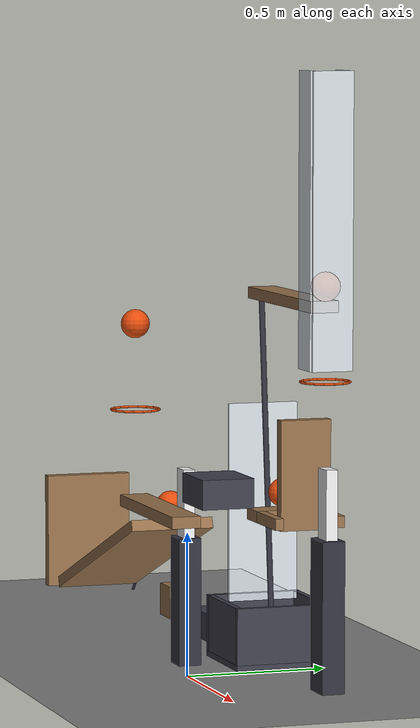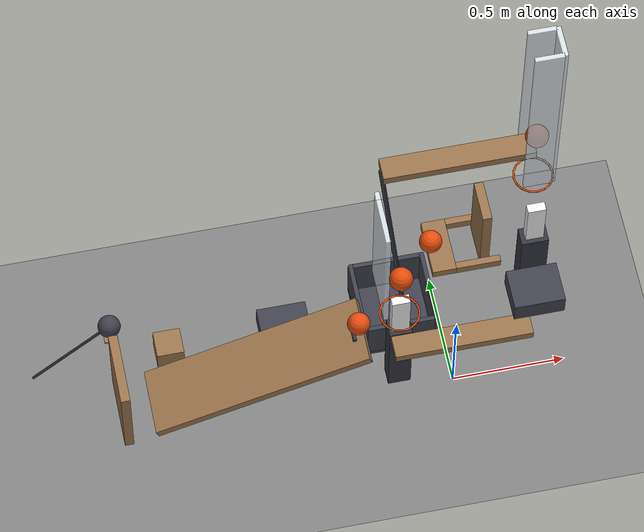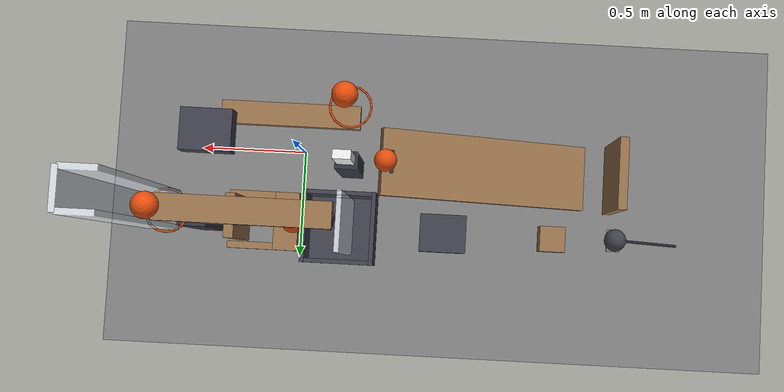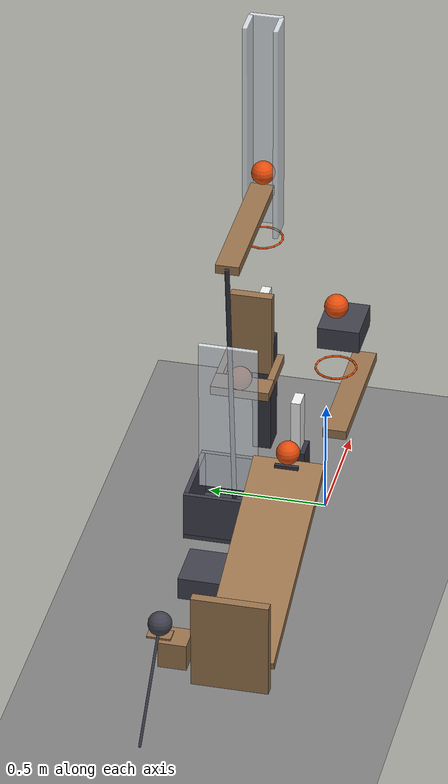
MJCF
<mujoco model="gravity_and_spring_cascade">
  <compiler angle="radian"/>
  <option timestep="0.002"/>
  <worldbody>
    <geom name="floor" type="plane" size="8 8 0.1" friction="0.72 0.005 0.0002"/>
    <body name="lever1" pos="0 -0.1 0.58">
      <joint name="lever1_hinge" type="hinge" pos="0 0 0" axis="0 1 0" limited="true" range="-0.785398 0" damping="0.04"/>
      <geom name="lever1" type="box" pos="0 0 0" size="0.3 0.05 0.02" mass="0.5" friction="0.72 0.005 0.0001" solref="0.01 0.715646" rgba="0.6 0.45 0.3 1"/>
    </body>
    <body name="ring1">
      <geom name="ring1_00" type="capsule" size="0.004" fromto="-0.196 -0.1 0.9 -0.202394 -0.0678546 0.9" friction="0.72 0.005 0.0001" solref="0.01 0.715646" rgba="0.9 0.3 0.05 1"/>
      <geom name="ring1_01" type="capsule" size="0.004" fromto="-0.202394 -0.0678546 0.9 -0.220603 -0.040603 0.9" friction="0.72 0.005 0.0001" solref="0.01 0.715646" rgba="0.9 0.3 0.05 1"/>
      <geom name="ring1_02" type="capsule" size="0.004" fromto="-0.220603 -0.040603 0.9 -0.247855 -0.0223941 0.9" friction="0.72 0.005 0.0001" solref="0.01 0.715646" rgba="0.9 0.3 0.05 1"/>
      <geom name="ring1_03" type="capsule" size="0.004" fromto="-0.247855 -0.0223941 0.9 -0.28 -0.016 0.9" friction="0.72 0.005 0.0001" solref="0.01 0.715646" rgba="0.9 0.3 0.05 1"/>
      <geom name="ring1_04" type="capsule" size="0.004" fromto="-0.28 -0.016 0.9 -0.312145 -0.0223941 0.9" friction="0.72 0.005 0.0001" solref="0.01 0.715646" rgba="0.9 0.3 0.05 1"/>
      <geom name="ring1_05" type="capsule" size="0.004" fromto="-0.312145 -0.0223941 0.9 -0.339397 -0.040603 0.9" friction="0.72 0.005 0.0001" solref="0.01 0.715646" rgba="0.9 0.3 0.05 1"/>
      <geom name="ring1_06" type="capsule" size="0.004" fromto="-0.339397 -0.040603 0.9 -0.357606 -0.0678546 0.9" friction="0.72 0.005 0.0001" solref="0.01 0.715646" rgba="0.9 0.3 0.05 1"/>
      <geom name="ring1_07" type="capsule" size="0.004" fromto="-0.357606 -0.0678546 0.9 -0.364 -0.1 0.9" friction="0.72 0.005 0.0001" solref="0.01 0.715646" rgba="0.9 0.3 0.05 1"/>
      <geom name="ring1_08" type="capsule" size="0.004" fromto="-0.364 -0.1 0.9 -0.357606 -0.132145 0.9" friction="0.72 0.005 0.0001" solref="0.01 0.715646" rgba="0.9 0.3 0.05 1"/>
      <geom name="ring1_09" type="capsule" size="0.004" fromto="-0.357606 -0.132145 0.9 -0.339397 -0.159397 0.9" friction="0.72 0.005 0.0001" solref="0.01 0.715646" rgba="0.9 0.3 0.05 1"/>
      <geom name="ring1_10" type="capsule" size="0.004" fromto="-0.339397 -0.159397 0.9 -0.312145 -0.177606 0.9" friction="0.72 0.005 0.0001" solref="0.01 0.715646" rgba="0.9 0.3 0.05 1"/>
      <geom name="ring1_11" type="capsule" size="0.004" fromto="-0.312145 -0.177606 0.9 -0.28 -0.184 0.9" friction="0.72 0.005 0.0001" solref="0.01 0.715646" rgba="0.9 0.3 0.05 1"/>
      <geom name="ring1_12" type="capsule" size="0.004" fromto="-0.28 -0.184 0.9 -0.247855 -0.177606 0.9" friction="0.72 0.005 0.0001" solref="0.01 0.715646" rgba="0.9 0.3 0.05 1"/>
      <geom name="ring1_13" type="capsule" size="0.004" fromto="-0.247855 -0.177606 0.9 -0.220603 -0.159397 0.9" friction="0.72 0.005 0.0001" solref="0.01 0.715646" rgba="0.9 0.3 0.05 1"/>
      <geom name="ring1_14" type="capsule" size="0.004" fromto="-0.220603 -0.159397 0.9 -0.202394 -0.132145 0.9" friction="0.72 0.005 0.0001" solref="0.01 0.715646" rgba="0.9 0.3 0.05 1"/>
      <geom name="ring1_15" type="capsule" size="0.004" fromto="-0.202394 -0.132145 0.9 -0.196 -0.1 0.9" friction="0.72 0.005 0.0001" solref="0.01 0.715646" rgba="0.9 0.3 0.05 1"/>
    </body>
    <body name="ball1" pos="-0.28 -0.1 1.2">
      <freejoint/>
      <geom name="ball1" type="sphere" pos="0 0 0" size="0.05" mass="0.2" condim="6" friction="0.72 0.005 0.0001" solref="0.01 0.715646" rgba="0.9 0.3 0.05 1"/>
    </body>
    <body name="cart1" pos="0.335 0 0.69">
      <joint name="cart1_slide" type="slide" pos="0 0 0" axis="1 0 0" limited="true" range="-0.65 0" damping="0.2"/>
      <geom name="cart1" type="box" pos="0 0 0" size="0.11 0.09 0.05" mass="0.5" friction="0.72 0.005 0.0001" solref="0.01 0.715646" rgba="0.25 0.25 0.3 1"/>
    </body>
    <body name="domino1 pedestal">
      <geom name="domino1 pedestal" type="box" pos="-0.235 0.07 0.225" size="0.05 0.04 0.225" friction="0.72 0.005 0.0001" solref="0.01 0.715646" rgba="0.2 0.2 0.25 1"/>
    </body>
    <body name="domino1" pos="-0.235 0.07 0.57">
      <freejoint/>
      <geom name="domino1" type="box" pos="0 0 0" size="0.04 0.02 0.12" mass="0.25" friction="0.72 0.005 0.0001" solref="0.01 0.715646" rgba="0.95 0.95 0.95 1"/>
    </body>
    <body name="ramp1">
      <geom name="ramp1" type="box" pos="-0.860905 0.07 0.302216" size="0.5 0.15 0.02" euler="0 2.79253 0" friction="0.72 0.005 0.0001" solref="0.01 0.715646" rgba="0.6 0.45 0.3 1"/>
    </body>
    <body name="ball2 chock">
      <geom name="ball2 chock" type="box" pos="-0.441 0.07 0.4852" size="0.008 0.05 0.0075" friction="0.72 0.005 0.0001" solref="0.01 0.715646" rgba="0.2 0.2 0.25 1"/>
    </body>
    <body name="ball2" pos="-0.415 0.07 0.539005">
      <freejoint/>
      <geom name="ball2" type="sphere" pos="0 0 0" size="0.05" mass="0.2" condim="6" friction="0.72 0.005 0.0001" solref="0.01 0.715646" rgba="0.9 0.3 0.05 1"/>
    </body>
    <body name="door1" pos="-1.45759 0.07 0.1">
      <joint name="door1_hinge" type="hinge" pos="0 0 0" axis="0 1 0" limited="true" range="-1.22173 0" damping="0.04"/>
      <geom name="door1" type="box" pos="0 0 0.21" size="0.02 0.16 0.21" mass="0.45" friction="0.72 0.005 0.0001" solref="0.01 0.715646" rgba="0.6 0.45 0.3 1"/>
      <geom name="door1 pendulum support" type="box" pos="0 0.29 0.211" size="0.03 0.05 0.004" mass="0.005" friction="0.72 0.005 0.0001" solref="0.01 0.715646" rgba="0.6 0.45 0.3 1"/>
    </body>
    <body name="pendulum1" pos="-1.81115 0.36 0.0114466">
      <joint name="pendulum1_hinge" type="hinge" pos="0 0 0" axis="0 1 0" limited="true" range="0 0.663225" stiffness="70" springref="0.663225" damping="0.04"/>
      <geom name="pendulum1" type="capsule" size="0.006" fromto="0 0 0 0.353553 0 0.353553" mass="0.1" friction="0.72 0.005 0.0001" solref="0.01 0.715646" rgba="0.2 0.2 0.25 1"/>
      <geom name="pendulum1 bob" type="sphere" pos="0.353553 0 0.353553" size="0.05" mass="0.25" friction="0.72 0.005 0.0001" solref="0.01 0.715646" rgba="0.25 0.25 0.3 1"/>
    </body>
    <body name="block1" pos="-1.20487 0.36 0.06">
      <freejoint/>
      <geom name="block1" type="box" pos="0 0 0" size="0.06 0.06 0.06" mass="0.35" friction="0.72 0.005 0.0001" solref="0.01 0.715646" rgba="0.6 0.45 0.3 1"/>
    </body>
    <body name="cart2" pos="-0.684872 0.36 0.055">
      <joint name="cart2_slide" type="slide" pos="0 0 0" axis="1 0 0" limited="true" range="0 1.4" damping="0.2"/>
      <geom name="cart2" type="box" pos="0 0 0" size="0.11 0.09 0.05" mass="0.5" friction="0.72 0.005 0.0001" solref="0.01 0.715646" rgba="0.25 0.25 0.3 1"/>
    </body>
    <body name="seesaw1" pos="0.0551281 0.36 1.3">
      <joint name="seesaw1_hinge" type="hinge" pos="0 0 0" axis="0 1 0" limited="true" range="-0.733038 0" stiffness="0.8" springref="-0.733038" damping="0.04"/>
      <geom name="seesaw1" type="box" pos="0 0 0" size="0.325 0.05 0.02" mass="0.55" friction="0.72 0.005 0.0001" solref="0.01 0.715646" rgba="0.6 0.45 0.3 1"/>
      <geom name="seesaw1 left striker" type="capsule" size="0.01" fromto="-0.325 0 0 -0.2 0 -1.255" mass="0.015" friction="0.72 0.005 0.0001" solref="0.01 0.715646" rgba="0.2 0.2 0.25 1"/>
    </body>
    <body name="ball3" pos="0.390128 0.36 1.36899">
      <freejoint/>
      <geom name="ball3" type="sphere" pos="0 0 0" size="0.05" mass="0.2" condim="6" friction="0.72 0.005 0.0001" solref="0.01 0.715646" rgba="0.9 0.3 0.05 1"/>
    </body>
    <body name="ball3 right guide">
      <geom name="ball3 right guide" type="box" pos="0.455128 0.36 1.59" size="0.01 0.07 0.5" friction="0.72 0.005 0.0001" solref="0.01 0.715646" rgba="0.92 0.95 0.98 0.85"/>
    </body>
    <body name="ball3 left-side guide">
      <geom name="ball3 left-side guide" type="box" pos="0.390128 0.425 1.59" size="0.06 0.01 0.5" friction="0.72 0.005 0.0001" solref="0.01 0.715646" rgba="0.92 0.95 0.98 0.85"/>
    </body>
    <body name="ball3 right-side guide">
      <geom name="ball3 right-side guide" type="box" pos="0.390128 0.295 1.59" size="0.06 0.01 0.5" friction="0.72 0.005 0.0001" solref="0.01 0.715646" rgba="0.92 0.95 0.98 0.85"/>
    </body>
    <body name="ring2">
      <geom name="ring2_00" type="capsule" size="0.004" fromto="0.474128 0.36 1.04899 0.467734 0.392145 1.04899" friction="0.72 0.005 0.0001" solref="0.01 0.715646" rgba="0.9 0.3 0.05 1"/>
      <geom name="ring2_01" type="capsule" size="0.004" fromto="0.467734 0.392145 1.04899 0.449525 0.419397 1.04899" friction="0.72 0.005 0.0001" solref="0.01 0.715646" rgba="0.9 0.3 0.05 1"/>
      <geom name="ring2_02" type="capsule" size="0.004" fromto="0.449525 0.419397 1.04899 0.422273 0.437606 1.04899" friction="0.72 0.005 0.0001" solref="0.01 0.715646" rgba="0.9 0.3 0.05 1"/>
      <geom name="ring2_03" type="capsule" size="0.004" fromto="0.422273 0.437606 1.04899 0.390128 0.444 1.04899" friction="0.72 0.005 0.0001" solref="0.01 0.715646" rgba="0.9 0.3 0.05 1"/>
      <geom name="ring2_04" type="capsule" size="0.004" fromto="0.390128 0.444 1.04899 0.357983 0.437606 1.04899" friction="0.72 0.005 0.0001" solref="0.01 0.715646" rgba="0.9 0.3 0.05 1"/>
      <geom name="ring2_05" type="capsule" size="0.004" fromto="0.357983 0.437606 1.04899 0.330731 0.419397 1.04899" friction="0.72 0.005 0.0001" solref="0.01 0.715646" rgba="0.9 0.3 0.05 1"/>
      <geom name="ring2_06" type="capsule" size="0.004" fromto="0.330731 0.419397 1.04899 0.312522 0.392145 1.04899" friction="0.72 0.005 0.0001" solref="0.01 0.715646" rgba="0.9 0.3 0.05 1"/>
      <geom name="ring2_07" type="capsule" size="0.004" fromto="0.312522 0.392145 1.04899 0.306128 0.36 1.04899" friction="0.72 0.005 0.0001" solref="0.01 0.715646" rgba="0.9 0.3 0.05 1"/>
      <geom name="ring2_08" type="capsule" size="0.004" fromto="0.306128 0.36 1.04899 0.312522 0.327855 1.04899" friction="0.72 0.005 0.0001" solref="0.01 0.715646" rgba="0.9 0.3 0.05 1"/>
      <geom name="ring2_09" type="capsule" size="0.004" fromto="0.312522 0.327855 1.04899 0.330731 0.300603 1.04899" friction="0.72 0.005 0.0001" solref="0.01 0.715646" rgba="0.9 0.3 0.05 1"/>
      <geom name="ring2_10" type="capsule" size="0.004" fromto="0.330731 0.300603 1.04899 0.357983 0.282394 1.04899" friction="0.72 0.005 0.0001" solref="0.01 0.715646" rgba="0.9 0.3 0.05 1"/>
      <geom name="ring2_11" type="capsule" size="0.004" fromto="0.357983 0.282394 1.04899 0.390128 0.276 1.04899" friction="0.72 0.005 0.0001" solref="0.01 0.715646" rgba="0.9 0.3 0.05 1"/>
      <geom name="ring2_12" type="capsule" size="0.004" fromto="0.390128 0.276 1.04899 0.422273 0.282394 1.04899" friction="0.72 0.005 0.0001" solref="0.01 0.715646" rgba="0.9 0.3 0.05 1"/>
      <geom name="ring2_13" type="capsule" size="0.004" fromto="0.422273 0.282394 1.04899 0.449525 0.300603 1.04899" friction="0.72 0.005 0.0001" solref="0.01 0.715646" rgba="0.9 0.3 0.05 1"/>
      <geom name="ring2_14" type="capsule" size="0.004" fromto="0.449525 0.300603 1.04899 0.467734 0.327855 1.04899" friction="0.72 0.005 0.0001" solref="0.01 0.715646" rgba="0.9 0.3 0.05 1"/>
      <geom name="ring2_15" type="capsule" size="0.004" fromto="0.467734 0.327855 1.04899 0.474128 0.36 1.04899" friction="0.72 0.005 0.0001" solref="0.01 0.715646" rgba="0.9 0.3 0.05 1"/>
    </body>
    <body name="domino2 pedestal">
      <geom name="domino2 pedestal" type="box" pos="0.420128 0.36 0.259495" size="0.06 0.04 0.259495" friction="0.72 0.005 0.0001" solref="0.01 0.715646" rgba="0.2 0.2 0.25 1"/>
    </body>
    <body name="domino2" pos="0.420128 0.36 0.63899">
      <freejoint/>
      <geom name="domino2" type="box" pos="0 0 0" size="0.04 0.02 0.12" mass="0.25" friction="0.72 0.005 0.0001" solref="0.01 0.715646" rgba="0.95 0.95 0.95 1"/>
    </body>
    <body name="flap1" pos="0.180128 0.36 0.51899">
      <joint name="flap1_hinge" type="hinge" pos="0 0 0" axis="0 1 0" limited="true" range="-1.0472 0" damping="0.04"/>
      <geom name="flap1" type="box" pos="0 0 0.19" size="0.02 0.09 0.19" mass="0.28" friction="0.72 0.005 0.0001" solref="0.01 0.715646" rgba="0.6 0.45 0.3 1"/>
    </body>
    <body name="cup1">
      <geom name="cup1_base" type="box" pos="-0.194872 0.36 0.01" size="0.17 0.17 0.01" friction="0.72 0.005 0.0001" solref="0.01 0.715646" rgba="0.25 0.25 0.3 1"/>
      <geom name="cup1_near_wall" type="box" pos="-0.354872 0.36 0.12" size="0.01 0.17 0.1" friction="0.72 0.005 0.0001" solref="0.01 0.715646" rgba="0.25 0.25 0.3 1"/>
      <geom name="cup1_far_wall" type="box" pos="-0.0348719 0.36 0.12" size="0.01 0.17 0.1" friction="0.72 0.005 0.0001" solref="0.01 0.715646" rgba="0.25 0.25 0.3 1"/>
      <geom name="cup1_left_wall" type="box" pos="-0.194872 0.52 0.12" size="0.15 0.01 0.1" friction="0.72 0.005 0.0001" solref="0.01 0.715646" rgba="0.25 0.25 0.3 1"/>
      <geom name="cup1_right_wall" type="box" pos="-0.194872 0.2 0.12" size="0.15 0.01 0.1" friction="0.72 0.005 0.0001" solref="0.01 0.715646" rgba="0.25 0.25 0.3 1"/>
    </body>
    <body name="shelf1">
      <geom name="shelf1_main_board" type="box" pos="-0.00287194 0.36 0.55" size="0.052 0.125 0.02" friction="0.72 0.005 0.0001" solref="0.01 0.715646" rgba="0.6 0.45 0.3 1"/>
      <geom name="shelf1_left_finger" type="box" pos="0.147128 0.47 0.55" size="0.098 0.015 0.02" friction="0.72 0.005 0.0001" solref="0.01 0.715646" rgba="0.6 0.45 0.3 1"/>
      <geom name="shelf1_right_finger" type="box" pos="0.147128 0.25 0.55" size="0.098 0.015 0.02" friction="0.72 0.005 0.0001" solref="0.01 0.715646" rgba="0.6 0.45 0.3 1"/>
    </body>
    <body name="ball4" pos="-0.0398719 0.36 0.62">
      <freejoint/>
      <geom name="ball4" type="sphere" pos="0 0 0" size="0.05" mass="0.2" condim="6" friction="0.72 0.005 0.0001" solref="0.01 0.715646" rgba="0.9 0.3 0.05 1"/>
    </body>
    <body name="cup1 catch backstop">
      <geom name="cup1 catch backstop" type="box" pos="-0.254872 0.36 0.56" size="0.01 0.125 0.35" friction="0.72 0.005 0.0001" solref="0.01 0.715646" rgba="0.92 0.95 0.98 0.85"/>
    </body>
  </worldbody>
  <keyframe>
    <key name="start" qpos="0 -0.28 -0.1 1.2 1 0 0 0 0 -0.235 0.07 0.57 1 0 0 0 -0.415 0.07 0.539005 1 0 0 0 0 0 -1.20487 0.36 0.06 1 0 0 0 0 0 0.390128 0.36 1.36899 1 0 0 0 0.420128 0.36 0.63899 1 0 0 0 0 -0.0398719 0.36 0.62 1 0 0 0" qvel="0 0 0 0 0 0 0 0 0 0 0 0 0 0 0 0 0 0 0 0 0 0 0 0 0 0 0 0 0 0 0 0 0 0 0 0 0 0 0 0 0 0 0 0 0 0 0 0 0"/>
  </keyframe>
</mujoco>
